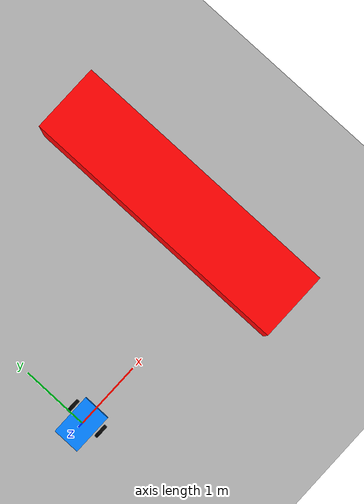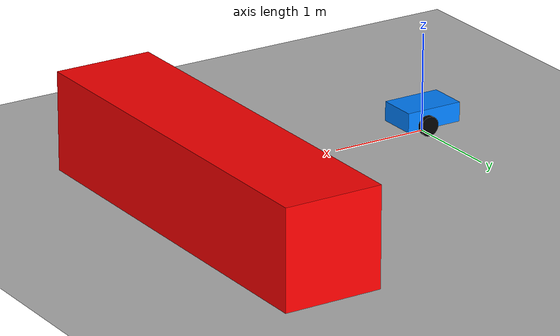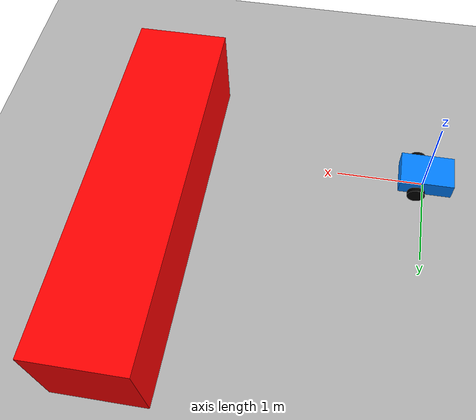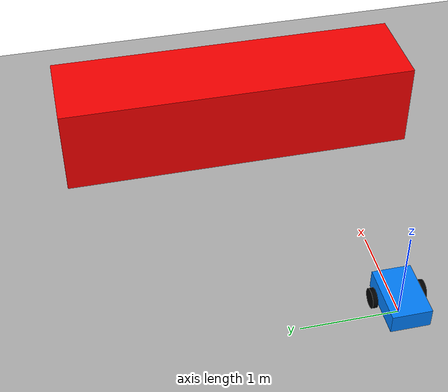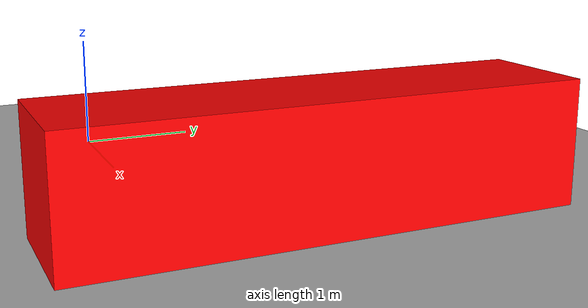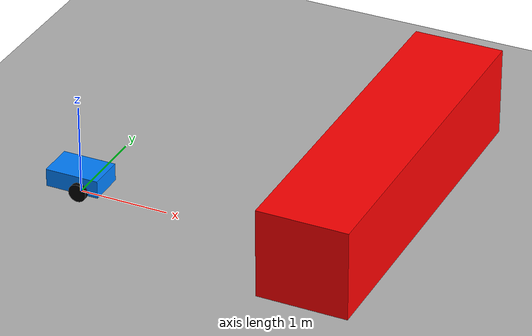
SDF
<?xml version="1.0" ?>
<sdf version="1.8">
  <world name="umd_loop_world">
    <physics name="1ms" type="ignored">
      <max_step_size>0.001</max_step_size>
      <real_time_factor>1.0</real_time_factor>
    </physics>
    <plugin filename="gz-sim-physics-system" name="gz::sim::systems::Physics" />
    <plugin filename="gz-sim-user-commands-system" name="gz::sim::systems::UserCommands" />
    <plugin filename="gz-sim-scene-broadcaster-system" name="gz::sim::systems::SceneBroadcaster" />
    <plugin filename="gz-sim-sensors-system" name="gz::sim::systems::Sensors"><render_engine>ogre2</render_engine></plugin>

    <light type="directional" name="sun">
      <cast_shadows>true</cast_shadows><pose>0 0 10 0 0 0</pose>
      <diffuse>0.8 0.8 0.8 1</diffuse><specular>0.2 0.2 0.2 1</specular>
      <direction>-0.5 0.1 -0.9</direction>
    </light>

    <model name="ground_plane">
      <static>true</static>
      <link name="link">
        <collision name="collision"><geometry><plane><normal>0 0 1</normal><size>100 100</size></plane></geometry></collision>
        <visual name="visual"><geometry><plane><normal>0 0 1</normal><size>100 100</size></plane></geometry><material><ambient>0.3 0.3 0.3 1</ambient><diffuse>0.7 0.7 0.7 1</diffuse></material></visual>
      </link>
    </model>

    <model name="wall_1">
      <static>true</static><pose>3.0 1.0 0.5 0 0 0</pose>
      <link name="box_link">
        <collision name="collision"><geometry><box><size>1.0 4.0 1.0</size></box></geometry></collision>
        <visual name="visual"><geometry><box><size>1.0 4.0 1.0</size></box></geometry><material><ambient>1.0 0.0 0.0 1</ambient><diffuse>1.0 0.0 0.0 1</diffuse></material></visual>
      </link>
    </model>

    <model name="cube_vehicle">
      <pose>0 0 0.2 0 0 0</pose>
      <link name="chassis">
        <inertial><mass>5.0</mass><inertia><ixx>0.08</ixx><ixy>0</ixy><ixz>0</ixz><iyy>0.08</iyy><iyz>0</iyz><izz>0.08</izz></inertia></inertial>
        <collision name="chassis_collision"><geometry><box><size>0.6 0.4 0.2</size></box></geometry></collision>
        <visual name="chassis_visual"><geometry><box><size>0.6 0.4 0.2</size></box></geometry><material><ambient>0.0 0.5 1.0 1</ambient><diffuse>0.0 0.5 1.0 1</diffuse></material></visual>
      </link>
      <link name="left_wheel">
        <pose>0.1 0.25 -0.05 -1.5707 0 0</pose>
        <collision name="collision"><geometry><sphere><radius>0.1</radius></sphere></geometry></collision>
        <visual name="visual"><geometry><cylinder><radius>0.1</radius><length>0.05</length></cylinder></geometry><material><ambient>0 0 0 1</ambient></material></visual>
      </link>
      <link name="right_wheel">
        <pose>0.1 -0.25 -0.05 -1.5707 0 0</pose>
        <collision name="collision"><geometry><sphere><radius>0.1</radius></sphere></geometry></collision>
        <visual name="visual"><geometry><cylinder><radius>0.1</radius><length>0.05</length></cylinder></geometry><material><ambient>0 0 0 1</ambient></material></visual>
      </link>
      <link name="caster">
        <pose>-0.2 0 -0.05 0 0 0</pose>
        <collision name="collision"><geometry><sphere><radius>0.1</radius></sphere></geometry><surface><friction><ode><mu>0.0</mu><mu2>0.0</mu2></ode></friction></surface></collision>
      </link>
      <joint name="left_wheel_joint" type="revolute"><parent>chassis</parent><child>left_wheel</child><axis><xyz>0 0 1</xyz></axis></joint>
      <joint name="right_wheel_joint" type="revolute"><parent>chassis</parent><child>right_wheel</child><axis><xyz>0 0 1</xyz></axis></joint>

      <link name="lidar_link">
        <pose>0.25 0 0.15 0 0 0</pose>
        <sensor name="laser" type="gpu_ray">
          <update_rate>10</update_rate>
          <ray>
            <horizontal><samples>180</samples><resolution>1</resolution><min_angle>-1.5707</min_angle><max_angle>1.5707</max_angle></horizontal>
            <range><min>0.1</min><max>10.0</max></range>
          </ray>
          <always_on>true</always_on><visualize>false</visualize>
        </sensor>
      </link>
      <joint name="lidar_joint" type="fixed"><parent>chassis</parent><child>lidar_link</child></joint>

      <plugin filename="gz-sim-diff-drive-system" name="gz::sim::systems::DiffDrive">
        <left_joint>left_wheel_joint</left_joint><right_joint>right_wheel_joint</right_joint>
        <wheel_separation>0.5</wheel_separation><wheel_radius>0.1</wheel_radius>
        <topic>/cmd_vel</topic><odom_topic>/odom</odom_topic>
        <frame_id>odom</frame_id><child_frame_id>cube_vehicle/chassis</child_frame_id>
      </plugin>
    </model>
  </world>
</sdf>
